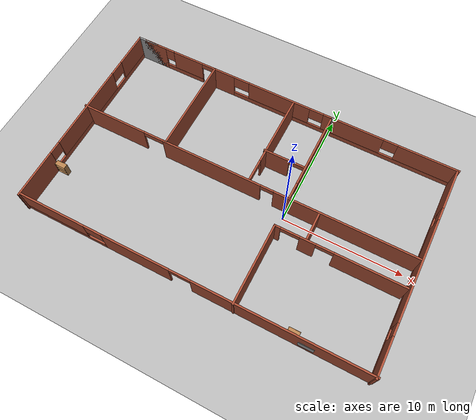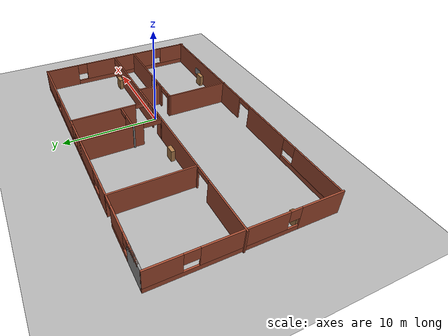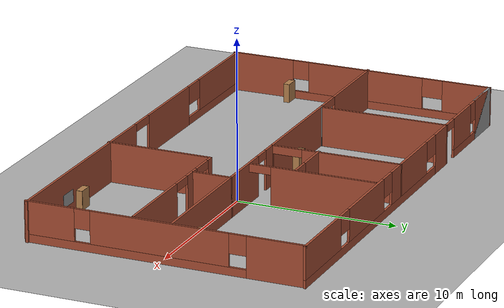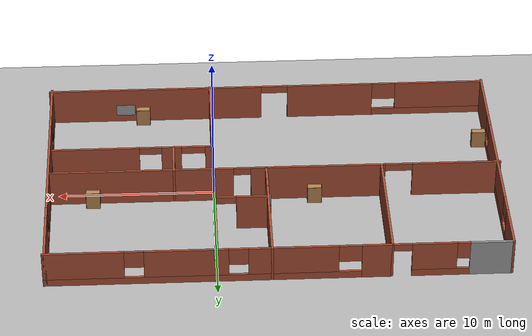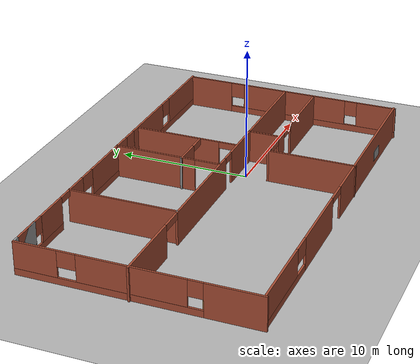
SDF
<sdf version="1.9">
 <world name="default">
  <gravity>0 0 -9.8</gravity>
  <magnetic_field>6e-06 2.3e-05 -4.2e-05</magnetic_field>
  <atmosphere type="adiabatic"/>
  <physics type="ode">
   <max_step_size>0.001</max_step_size>
   <real_time_factor>1</real_time_factor>
   <real_time_update_rate>1000</real_time_update_rate>
  </physics>
  <scene><ambient>0.4 0.4 0.4 1</ambient><background>0.7 0.7 0.7 1</background><shadows>true</shadows></scene>
  <model name="home">
   <pose>-3.83983 0.260073 0 0 -0 0</pose>
   <link name="Wall_0">
    <pose>0.359938 8.61553 0 0 -0 0</pose>
    <visual name="Wall_0_Visual_0">
     <pose>-13.176 0 1.25 0 -0 0</pose>
     <geometry><box><size>2.14806 0.15 2.5</size></box></geometry>
     <material>
      <script><uri>file://media/materials/scripts/gazebo.material</uri><name>Gazebo/Bricks</name></script>
      <ambient>1 1 1 1</ambient>
     </material>
     <meta><layer>0</layer></meta>
    </visual>
    <collision name="Wall_0_Collision_0">
     <geometry><box><size>2.14806 0.15 2.5</size></box></geometry>
     <pose>-13.176 0 1.25 0 -0 0</pose>
    </collision>
    <visual name="Wall_0_Visual_1">
     <pose>-6.35296 0 1.25 0 -0 0</pose>
     <geometry><box><size>1.86866 0.15 2.5</size></box></geometry>
     <material>
      <script><uri>file://media/materials/scripts/gazebo.material</uri><name>Gazebo/Bricks</name></script>
      <ambient>1 1 1 1</ambient>
     </material>
     <meta><layer>0</layer></meta>
    </visual>
    <collision name="Wall_0_Collision_1">
     <geometry><box><size>1.86866 0.15 2.5</size></box></geometry>
     <pose>-6.35296 0 1.25 0 -0 0</pose>
    </collision>
    <visual name="Wall_0_Visual_2">
     <pose>-10.306 0 0.25 0 -0 0</pose>
     <geometry><box><size>3.59185 0.15 0.5</size></box></geometry>
     <material>
      <script><uri>file://media/materials/scripts/gazebo.material</uri><name>Gazebo/Bricks</name></script>
      <ambient>1 1 1 1</ambient>
     </material>
     <meta><layer>0</layer></meta>
    </visual>
    <collision name="Wall_0_Collision_2">
     <geometry><box><size>3.59185 0.15 0.5</size></box></geometry>
     <pose>-10.306 0 0.25 0 -0 0</pose>
    </collision>
    <visual name="Wall_0_Visual_3">
     <pose>4.41569 0 0.25 0 -0 0</pose>
     <geometry><box><size>19.6686 0.15 0.5</size></box></geometry>
     <material>
      <script><uri>file://media/materials/scripts/gazebo.material</uri><name>Gazebo/Bricks</name></script>
      <ambient>1 1 1 1</ambient>
     </material>
     <meta><layer>0</layer></meta>
    </visual>
    <collision name="Wall_0_Collision_3">
     <geometry><box><size>19.6686 0.15 0.5</size></box></geometry>
     <pose>4.41569 0 0.25 0 -0 0</pose>
    </collision>
    <visual name="Wall_0_Visual_4">
     <pose>-9.90602 0 1.5 0 -0 0</pose>
     <geometry><box><size>2.79185 0.15 2</size></box></geometry>
     <material>
      <script><uri>file://media/materials/scripts/gazebo.material</uri><name>Gazebo/Bricks</name></script>
      <ambient>1 1 1 1</ambient>
     </material>
     <meta><layer>0</layer></meta>
    </visual>
    <collision name="Wall_0_Collision_4">
     <geometry><box><size>2.79185 0.15 2</size></box></geometry>
     <pose>-9.90602 0 1.5 0 -0 0</pose>
    </collision>
    <visual name="Wall_0_Visual_5">
     <pose>-9.90602 0 1.5 0 -0 0</pose>
     <geometry><box><size>2.79185 0.15 2</size></box></geometry>
     <material>
      <script><uri>file://media/materials/scripts/gazebo.material</uri><name>Gazebo/Bricks</name></script>
      <ambient>1 1 1 1</ambient>
     </material>
     <meta><layer>0</layer></meta>
    </visual>
    <collision name="Wall_0_Collision_5">
     <geometry><box><size>2.79185 0.15 2</size></box></geometry>
     <pose>-9.90602 0 1.5 0 -0 0</pose>
    </collision>
    <visual name="Wall_0_Visual_6">
     <pose>-1.21828 0 1.5 0 -0 0</pose>
     <geometry><box><size>5.57656 0.15 2</size></box></geometry>
     <material>
      <script><uri>file://media/materials/scripts/gazebo.material</uri><name>Gazebo/Bricks</name></script>
      <ambient>1 1 1 1</ambient>
     </material>
     <meta><layer>0</layer></meta>
    </visual>
    <collision name="Wall_0_Collision_6">
     <geometry><box><size>5.57656 0.15 2</size></box></geometry>
     <pose>-1.21828 0 1.5 0 -0 0</pose>
    </collision>
    <visual name="Wall_0_Visual_7">
     <pose>5.38737 0 1.5 0 -0 0</pose>
     <geometry><box><size>5.21864 0.15 2</size></box></geometry>
     <material>
      <script><uri>file://media/materials/scripts/gazebo.material</uri><name>Gazebo/Bricks</name></script>
      <ambient>1 1 1 1</ambient>
     </material>
     <meta><layer>0</layer></meta>
    </visual>
    <collision name="Wall_0_Collision_7">
     <geometry><box><size>5.21864 0.15 2</size></box></geometry>
     <pose>5.38737 0 1.5 0 -0 0</pose>
    </collision>
    <visual name="Wall_0_Visual_8">
     <pose>11.7274 0 1.5 0 -0 0</pose>
     <geometry><box><size>5.04527 0.15 2</size></box></geometry>
     <material>
      <script><uri>file://media/materials/scripts/gazebo.material</uri><name>Gazebo/Bricks</name></script>
      <ambient>1 1 1 1</ambient>
     </material>
     <meta><layer>0</layer></meta>
    </visual>
    <collision name="Wall_0_Collision_8">
     <geometry><box><size>5.04527 0.15 2</size></box></geometry>
     <pose>11.7274 0 1.5 0 -0 0</pose>
    </collision>
    <visual name="Wall_0_Visual_9">
     <pose>-11.7019 0 1.9 0 -0 0</pose>
     <geometry><box><size>0.8 0.15 1.2</size></box></geometry>
     <material>
      <script><uri>file://media/materials/scripts/gazebo.material</uri><name>Gazebo/Bricks</name></script>
      <ambient>1 1 1 1</ambient>
     </material>
     <meta><layer>0</layer></meta>
    </visual>
    <collision name="Wall_0_Collision_9">
     <geometry><box><size>0.8 0.15 1.2</size></box></geometry>
     <pose>-11.7019 0 1.9 0 -0 0</pose>
    </collision>
    <visual name="Wall_0_Visual_10">
     <pose>-4.71259 0 1.9 0 -0 0</pose>
     <geometry><box><size>1.41206 0.15 1.2</size></box></geometry>
     <material>
      <script><uri>file://media/materials/scripts/gazebo.material</uri><name>Gazebo/Bricks</name></script>
      <ambient>1 1 1 1</ambient>
     </material>
     <meta><layer>0</layer></meta>
    </visual>
    <collision name="Wall_0_Collision_10">
     <geometry><box><size>1.41206 0.15 1.2</size></box></geometry>
     <pose>-4.71259 0 1.9 0 -0 0</pose>
    </collision>
    <visual name="Wall_0_Visual_11">
     <pose>2.17402 0 1.9 0 -0 0</pose>
     <geometry><box><size>1.20804 0.15 1.2</size></box></geometry>
     <material>
      <script><uri>file://media/materials/scripts/gazebo.material</uri><name>Gazebo/Bricks</name></script>
      <ambient>1 1 1 1</ambient>
     </material>
     <meta><layer>0</layer></meta>
    </visual>
    <collision name="Wall_0_Collision_11">
     <geometry><box><size>1.20804 0.15 1.2</size></box></geometry>
     <pose>2.17402 0 1.9 0 -0 0</pose>
    </collision>
    <visual name="Wall_0_Visual_12">
     <pose>8.60071 0 1.9 0 -0 0</pose>
     <geometry><box><size>1.20804 0.15 1.2</size></box></geometry>
     <material>
      <script><uri>file://media/materials/scripts/gazebo.material</uri><name>Gazebo/Bricks</name></script>
      <ambient>1 1 1 1</ambient>
     </material>
     <meta><layer>0</layer></meta>
    </visual>
    <collision name="Wall_0_Collision_12">
     <geometry><box><size>1.20804 0.15 1.2</size></box></geometry>
     <pose>8.60071 0 1.9 0 -0 0</pose>
    </collision>
    <visual name="Wall_0_Visual_13">
     <pose>-7.89869 0 2.25 0 -0 0</pose>
     <geometry><box><size>1.2228 0.15 0.5</size></box></geometry>
     <material>
      <script><uri>file://media/materials/scripts/gazebo.material</uri><name>Gazebo/Bricks</name></script>
      <ambient>1 1 1 1</ambient>
     </material>
     <meta><layer>0</layer></meta>
    </visual>
    <collision name="Wall_0_Collision_13">
     <geometry><box><size>1.2228 0.15 0.5</size></box></geometry>
     <pose>-7.89869 0 2.25 0 -0 0</pose>
    </collision>
    <visual name="Wall_0_Visual_14">
     <pose>-7.89869 0 2.25 0 -0 0</pose>
     <geometry><box><size>1.2228 0.15 0.5</size></box></geometry>
     <material>
      <script><uri>file://media/materials/scripts/gazebo.material</uri><name>Gazebo/Bricks</name></script>
      <ambient>1 1 1 1</ambient>
     </material>
     <meta><layer>0</layer></meta>
    </visual>
    <collision name="Wall_0_Collision_14">
     <geometry><box><size>1.2228 0.15 0.5</size></box></geometry>
     <pose>-7.89869 0 2.25 0 -0 0</pose>
    </collision>
    <inertial>
     <mass>1</mass>
     <inertia><ixx>1</ixx><ixy>0</ixy><ixz>0</ixz><iyy>1</iyy><iyz>0</iyz><izz>1</izz></inertia>
    </inertial>
   </link>
   <link name="Wall_1">
    <pose>14.4329 0 0 0 0 -1.5708</pose>
    <visual name="Wall_1_Visual_0">
     <pose>-6.87833 0 1.25 0 -0 0</pose>
     <geometry><box><size>3.6244 0.15 2.5</size></box></geometry>
     <material>
      <script><uri>file://media/materials/scripts/gazebo.material</uri><name>Gazebo/Bricks</name></script>
      <ambient>1 1 1 1</ambient>
     </material>
     <meta><layer>0</layer></meta>
    </visual>
    <collision name="Wall_1_Collision_0">
     <geometry><box><size>3.6244 0.15 2.5</size></box></geometry>
     <pose>-6.87833 0 1.25 0 -0 0</pose>
    </collision>
    <visual name="Wall_1_Visual_1">
     <pose>1.8122 0 0.25 0 -0 0</pose>
     <geometry><box><size>13.7567 0.15 0.5</size></box></geometry>
     <material>
      <script><uri>file://media/materials/scripts/gazebo.material</uri><name>Gazebo/Bricks</name></script>
      <ambient>1 1 1 1</ambient>
     </material>
     <meta><layer>0</layer></meta>
    </visual>
    <collision name="Wall_1_Collision_1">
     <geometry><box><size>13.7567 0.15 0.5</size></box></geometry>
     <pose>1.8122 0 0.25 0 -0 0</pose>
    </collision>
    <visual name="Wall_1_Visual_2">
     <pose>0.280547 0 1.5 0 -0 0</pose>
     <geometry><box><size>8.55372 0.15 2</size></box></geometry>
     <material>
      <script><uri>file://media/materials/scripts/gazebo.material</uri><name>Gazebo/Bricks</name></script>
      <ambient>1 1 1 1</ambient>
     </material>
     <meta><layer>0</layer></meta>
    </visual>
    <collision name="Wall_1_Collision_2">
     <geometry><box><size>8.55372 0.15 2</size></box></geometry>
     <pose>0.280547 0 1.5 0 -0 0</pose>
    </collision>
    <visual name="Wall_1_Visual_3">
     <pose>7.11391 0 1.5 0 -0 0</pose>
     <geometry><box><size>3.15324 0.15 2</size></box></geometry>
     <material>
      <script><uri>file://media/materials/scripts/gazebo.material</uri><name>Gazebo/Bricks</name></script>
      <ambient>1 1 1 1</ambient>
     </material>
     <meta><layer>0</layer></meta>
    </visual>
    <collision name="Wall_1_Collision_3">
     <geometry><box><size>3.15324 0.15 2</size></box></geometry>
     <pose>7.11391 0 1.5 0 -0 0</pose>
    </collision>
    <visual name="Wall_1_Visual_4">
     <pose>-4.53122 0 1.9 0 -0 0</pose>
     <geometry><box><size>1.06982 0.15 1.2</size></box></geometry>
     <material>
      <script><uri>file://media/materials/scripts/gazebo.material</uri><name>Gazebo/Bricks</name></script>
      <ambient>1 1 1 1</ambient>
     </material>
     <meta><layer>0</layer></meta>
    </visual>
    <collision name="Wall_1_Collision_4">
     <geometry><box><size>1.06982 0.15 1.2</size></box></geometry>
     <pose>-4.53122 0 1.9 0 -0 0</pose>
    </collision>
    <visual name="Wall_1_Visual_5">
     <pose>5.04735 0 1.9 0 -0 0</pose>
     <geometry><box><size>0.979879 0.15 1.2</size></box></geometry>
     <material>
      <script><uri>file://media/materials/scripts/gazebo.material</uri><name>Gazebo/Bricks</name></script>
      <ambient>1 1 1 1</ambient>
     </material>
     <meta><layer>0</layer></meta>
    </visual>
    <collision name="Wall_1_Collision_5">
     <geometry><box><size>0.979879 0.15 1.2</size></box></geometry>
     <pose>5.04735 0 1.9 0 -0 0</pose>
    </collision>
    <inertial>
     <mass>1</mass>
     <inertia><ixx>1</ixx><ixy>0</ixy><ixz>0</ixz><iyy>1</iyy><iyz>0</iyz><izz>1</izz></inertia>
    </inertial>
   </link>
   <link name="Wall_11">
    <collision name="Wall_11_Collision">
     <geometry><box><size>0.16 0.15 2.5</size></box></geometry>
     <pose>0 0 1.25 0 -0 0</pose>
    </collision>
    <visual name="Wall_11_Visual">
     <pose>0 0 1.25 0 -0 0</pose>
     <geometry><box><size>0.16 0.15 2.5</size></box></geometry>
     <material>
      <script><uri>file://media/materials/scripts/gazebo.material</uri><name>Gazebo/Grey</name></script>
      <ambient>1 1 1 1</ambient>
     </material>
     <meta><layer>0</layer></meta>
    </visual>
    <pose>3.96813 8.61553 0 0 -0 0</pose>
    <inertial>
     <mass>1</mass>
     <inertia><ixx>1</ixx><ixy>0</ixy><ixz>0</ixz><iyy>1</iyy><iyz>0</iyz><izz>1</izz></inertia>
    </inertial>
   </link>
   <link name="Wall_17">
    <pose>9.03233 -1.96447 0 0 -0 0</pose>
    <visual name="Wall_17_Visual_0">
     <pose>-4.97826 0 1.25 0 -0 0</pose>
     <geometry><box><size>0.543472 0.15 2.5</size></box></geometry>
     <material>
      <script><uri>file://media/materials/scripts/gazebo.material</uri><name>Gazebo/Bricks</name></script>
      <ambient>1 1 1 1</ambient>
     </material>
     <meta><layer>0</layer></meta>
    </visual>
    <collision name="Wall_17_Collision_0">
     <geometry><box><size>0.543472 0.15 2.5</size></box></geometry>
     <pose>-4.97826 0 1.25 0 -0 0</pose>
    </collision>
    <visual name="Wall_17_Visual_1">
     <pose>-2.51429 0 1.25 0 -0 0</pose>
     <geometry><box><size>1.29038 0.15 2.5</size></box></geometry>
     <material>
      <script><uri>file://media/materials/scripts/gazebo.material</uri><name>Gazebo/Bricks</name></script>
      <ambient>1 1 1 1</ambient>
     </material>
     <meta><layer>0</layer></meta>
    </visual>
    <collision name="Wall_17_Collision_1">
     <geometry><box><size>1.29038 0.15 2.5</size></box></geometry>
     <pose>-2.51429 0 1.25 0 -0 0</pose>
    </collision>
    <visual name="Wall_17_Visual_2">
     <pose>2.40495 0 1.25 0 -0 0</pose>
     <geometry><box><size>5.6901 0.15 2.5</size></box></geometry>
     <material>
      <script><uri>file://media/materials/scripts/gazebo.material</uri><name>Gazebo/Bricks</name></script>
      <ambient>1 1 1 1</ambient>
     </material>
     <meta><layer>0</layer></meta>
    </visual>
    <collision name="Wall_17_Collision_2">
     <geometry><box><size>5.6901 0.15 2.5</size></box></geometry>
     <pose>2.40495 0 1.25 0 -0 0</pose>
    </collision>
    <visual name="Wall_17_Visual_3">
     <pose>-3.933 0 2.25 0 -0 0</pose>
     <geometry><box><size>1.54705 0.15 0.5</size></box></geometry>
     <material>
      <script><uri>file://media/materials/scripts/gazebo.material</uri><name>Gazebo/Bricks</name></script>
      <ambient>1 1 1 1</ambient>
     </material>
     <meta><layer>0</layer></meta>
    </visual>
    <collision name="Wall_17_Collision_3">
     <geometry><box><size>1.54705 0.15 0.5</size></box></geometry>
     <pose>-3.933 0 2.25 0 -0 0</pose>
    </collision>
    <visual name="Wall_17_Visual_4">
     <pose>-1.1546 0 2.25 0 -0 0</pose>
     <geometry><box><size>1.429 0.15 0.5</size></box></geometry>
     <material>
      <script><uri>file://media/materials/scripts/gazebo.material</uri><name>Gazebo/Bricks</name></script>
      <ambient>1 1 1 1</ambient>
     </material>
     <meta><layer>0</layer></meta>
    </visual>
    <collision name="Wall_17_Collision_4">
     <geometry><box><size>1.429 0.15 0.5</size></box></geometry>
     <pose>-1.1546 0 2.25 0 -0 0</pose>
    </collision>
    <inertial>
     <mass>1</mass>
     <inertia><ixx>1</ixx><ixy>0</ixy><ixz>0</ixz><iyy>1</iyy><iyz>0</iyz><izz>1</izz></inertia>
    </inertial>
   </link>
   <link name="Wall_19">
    <collision name="Wall_19_Collision">
     <geometry><box><size>2.5 0.15 2.5</size></box></geometry>
     <pose>0 0 1.25 0 -0 0</pose>
    </collision>
    <visual name="Wall_19_Visual">
     <pose>0 0 1.25 0 -0 0</pose>
     <geometry><box><size>2.5 0.15 2.5</size></box></geometry>
     <material>
      <script><uri>file://media/materials/scripts/gazebo.material</uri><name>Gazebo/Bricks</name></script>
      <ambient>1 1 1 1</ambient>
     </material>
     <meta><layer>0</layer></meta>
    </visual>
    <pose>6.39653 -0.706073 0 0 0 -1.5708</pose>
    <inertial>
     <mass>1</mass>
     <inertia><ixx>1</ixx><ixy>0</ixy><ixz>0</ixz><iyy>1</iyy><iyz>0</iyz><izz>1</izz></inertia>
    </inertial>
   </link>
   <link name="Wall_2">
    <pose>0.126872 -8.49658 0 0 -0 3.14159</pose>
    <visual name="Wall_2_Visual_0">
     <pose>-7.39469 0 1.25 0 -0 0</pose>
     <geometry><box><size>14.2106 0.15 2.5</size></box></geometry>
     <material>
      <script><uri>file://media/materials/scripts/gazebo.material</uri><name>Gazebo/Bricks</name></script>
      <ambient>1 1 1 1</ambient>
     </material>
     <meta><layer>0</layer></meta>
    </visual>
    <collision name="Wall_2_Collision_0">
     <geometry><box><size>14.2106 0.15 2.5</size></box></geometry>
     <pose>-7.39469 0 1.25 0 -0 0</pose>
    </collision>
    <visual name="Wall_2_Visual_1">
     <pose>4.3199 0 1.25 0 -0 0</pose>
     <geometry><box><size>5.72155 0.15 2.5</size></box></geometry>
     <material>
      <script><uri>file://media/materials/scripts/gazebo.material</uri><name>Gazebo/Bricks</name></script>
      <ambient>1 1 1 1</ambient>
     </material>
     <meta><layer>0</layer></meta>
    </visual>
    <collision name="Wall_2_Collision_1">
     <geometry><box><size>5.72155 0.15 2.5</size></box></geometry>
     <pose>4.3199 0 1.25 0 -0 0</pose>
    </collision>
    <visual name="Wall_2_Visual_2">
     <pose>10.8403 0 0.25 0 -0 0</pose>
     <geometry><box><size>7.31932 0.15 0.5</size></box></geometry>
     <material>
      <script><uri>file://media/materials/scripts/gazebo.material</uri><name>Gazebo/Bricks</name></script>
      <ambient>1 1 1 1</ambient>
     </material>
     <meta><layer>0</layer></meta>
    </visual>
    <collision name="Wall_2_Collision_2">
     <geometry><box><size>7.31932 0.15 0.5</size></box></geometry>
     <pose>10.8403 0 0.25 0 -0 0</pose>
    </collision>
    <visual name="Wall_2_Visual_3">
     <pose>11.6116 0 1.5 0 -0 0</pose>
     <geometry><box><size>5.77687 0.15 2</size></box></geometry>
     <material>
      <script><uri>file://media/materials/scripts/gazebo.material</uri><name>Gazebo/Bricks</name></script>
      <ambient>1 1 1 1</ambient>
     </material>
     <meta><layer>0</layer></meta>
    </visual>
    <collision name="Wall_2_Collision_3">
     <geometry><box><size>5.77687 0.15 2</size></box></geometry>
     <pose>11.6116 0 1.5 0 -0 0</pose>
    </collision>
    <visual name="Wall_2_Visual_4">
     <pose>7.9519 0 1.9 0 -0 0</pose>
     <geometry><box><size>1.54245 0.15 1.2</size></box></geometry>
     <material>
      <script><uri>file://media/materials/scripts/gazebo.material</uri><name>Gazebo/Bricks</name></script>
      <ambient>1 1 1 1</ambient>
     </material>
     <meta><layer>0</layer></meta>
    </visual>
    <collision name="Wall_2_Collision_4">
     <geometry><box><size>1.54245 0.15 1.2</size></box></geometry>
     <pose>7.9519 0 1.9 0 -0 0</pose>
    </collision>
    <visual name="Wall_2_Visual_5">
     <pose>0.584873 0 2.25 0 -0 0</pose>
     <geometry><box><size>1.74852 0.15 0.5</size></box></geometry>
     <material>
      <script><uri>file://media/materials/scripts/gazebo.material</uri><name>Gazebo/Bricks</name></script>
      <ambient>1 1 1 1</ambient>
     </material>
     <meta><layer>0</layer></meta>
    </visual>
    <collision name="Wall_2_Collision_5">
     <geometry><box><size>1.74852 0.15 0.5</size></box></geometry>
     <pose>0.584873 0 2.25 0 -0 0</pose>
    </collision>
    <inertial>
     <mass>1</mass>
     <inertia><ixx>1</ixx><ixy>0</ixy><ixz>0</ixz><iyy>1</iyy><iyz>0</iyz><izz>1</izz></inertia>
    </inertial>
   </link>
   <link name="Wall_21">
    <pose>0.471727 4.56553 0 0 0 -1.5708</pose>
    <visual name="Wall_21_Visual_0">
     <pose>-0.9798 0 1.25 0 -0 0</pose>
     <geometry><box><size>6.2904 0.15 2.5</size></box></geometry>
     <material>
      <script><uri>file://media/materials/scripts/gazebo.material</uri><name>Gazebo/Bricks</name></script>
      <ambient>1 1 1 1</ambient>
     </material>
     <meta><layer>0</layer></meta>
    </visual>
    <collision name="Wall_21_Collision_0">
     <geometry><box><size>6.2904 0.15 2.5</size></box></geometry>
     <pose>-0.9798 0 1.25 0 -0 0</pose>
    </collision>
    <visual name="Wall_21_Visual_1">
     <pose>4.0713 0 1.25 0 -0 0</pose>
     <geometry><box><size>0.1074 0.15 2.5</size></box></geometry>
     <material>
      <script><uri>file://media/materials/scripts/gazebo.material</uri><name>Gazebo/Bricks</name></script>
      <ambient>1 1 1 1</ambient>
     </material>
     <meta><layer>0</layer></meta>
    </visual>
    <collision name="Wall_21_Collision_1">
     <geometry><box><size>0.1074 0.15 2.5</size></box></geometry>
     <pose>4.0713 0 1.25 0 -0 0</pose>
    </collision>
    <visual name="Wall_21_Visual_2">
     <pose>3.0915 0 2.25 0 -0 0</pose>
     <geometry><box><size>1.8522 0.15 0.5</size></box></geometry>
     <material>
      <script><uri>file://media/materials/scripts/gazebo.material</uri><name>Gazebo/Bricks</name></script>
      <ambient>1 1 1 1</ambient>
     </material>
     <meta><layer>0</layer></meta>
    </visual>
    <collision name="Wall_21_Collision_2">
     <geometry><box><size>1.8522 0.15 0.5</size></box></geometry>
     <pose>3.0915 0 2.25 0 -0 0</pose>
    </collision>
    <inertial>
     <mass>1</mass>
     <inertia><ixx>1</ixx><ixy>0</ixy><ixz>0</ixz><iyy>1</iyy><iyz>0</iyz><izz>1</izz></inertia>
    </inertial>
   </link>
   <link name="Wall_24">
    <collision name="Wall_24_Collision">
     <geometry><box><size>8.25 0.15 2.5</size></box></geometry>
     <pose>0 0 1.25 0 -0 0</pose>
    </collision>
    <visual name="Wall_24_Visual">
     <pose>0 0 1.25 0 -0 0</pose>
     <geometry><box><size>8.25 0.15 2.5</size></box></geometry>
     <material>
      <script><uri>file://media/materials/scripts/gazebo.material</uri><name>Gazebo/Bricks</name></script>
      <ambient>1 1 1 1</ambient>
     </material>
     <meta><layer>0</layer></meta>
    </visual>
    <pose>-6.93427 4.56553 0 0 0 -1.5708</pose>
    <inertial>
     <mass>1</mass>
     <inertia><ixx>1</ixx><ixy>0</ixy><ixz>0</ixz><iyy>1</iyy><iyz>0</iyz><izz>1</izz></inertia>
    </inertial>
   </link>
   <link name="Wall_25">
    <collision name="Wall_25_Collision">
     <geometry><box><size>0.16 0.15 2.5</size></box></geometry>
     <pose>0 0 1.25 0 -0 0</pose>
    </collision>
    <visual name="Wall_25_Visual">
     <pose>0 0 1.25 0 -0 0</pose>
     <geometry><box><size>0.16 0.15 2.5</size></box></geometry>
     <material>
      <script><uri>file://media/materials/scripts/gazebo.material</uri><name>Gazebo/Grey</name></script>
      <ambient>1 1 1 1</ambient>
     </material>
     <meta><layer>0</layer></meta>
    </visual>
    <pose>-6.92927 0.515527 0 0 -0 0</pose>
    <inertial>
     <mass>1</mass>
     <inertia><ixx>1</ixx><ixy>0</ixy><ixz>0</ixz><iyy>1</iyy><iyz>0</iyz><izz>1</izz></inertia>
    </inertial>
   </link>
   <link name="Wall_27">
    <collision name="Wall_27_Collision">
     <geometry><box><size>0.16 0.15 2.5</size></box></geometry>
     <pose>0 0 1.25 0 -0 0</pose>
    </collision>
    <visual name="Wall_27_Visual">
     <pose>0 0 1.25 0 -0 0</pose>
     <geometry><box><size>0.16 0.15 2.5</size></box></geometry>
     <material>
      <script><uri>file://media/materials/scripts/gazebo.material</uri><name>Gazebo/Grey</name></script>
      <ambient>1 1 1 1</ambient>
     </material>
     <meta><layer>0</layer></meta>
    </visual>
    <pose>0.370927 3.43133 0 0 -0 0</pose>
    <inertial>
     <mass>1</mass>
     <inertia><ixx>1</ixx><ixy>0</ixy><ixz>0</ixz><iyy>1</iyy><iyz>0</iyz><izz>1</izz></inertia>
    </inertial>
   </link>
   <link name="Wall_28">
    <pose>2.05093 3.43133 0 0 -0 0</pose>
    <visual name="Wall_28_Visual_0">
     <pose>-0.651557 0 1.25 0 -0 0</pose>
     <geometry><box><size>2.19689 0.15 2.5</size></box></geometry>
     <material>
      <script><uri>file://media/materials/scripts/gazebo.material</uri><name>Gazebo/Bricks</name></script>
      <ambient>1 1 1 1</ambient>
     </material>
     <meta><layer>0</layer></meta>
    </visual>
    <collision name="Wall_28_Collision_0">
     <geometry><box><size>2.19689 0.15 2.5</size></box></geometry>
     <pose>-0.651557 0 1.25 0 -0 0</pose>
    </collision>
    <visual name="Wall_28_Visual_1">
     <pose>1.09844 0 2.25 0 -0 0</pose>
     <geometry><box><size>1.30311 0.15 0.5</size></box></geometry>
     <material>
      <script><uri>file://media/materials/scripts/gazebo.material</uri><name>Gazebo/Bricks</name></script>
      <ambient>1 1 1 1</ambient>
     </material>
     <meta><layer>0</layer></meta>
    </visual>
    <collision name="Wall_28_Collision_1">
     <geometry><box><size>1.30311 0.15 0.5</size></box></geometry>
     <pose>1.09844 0 2.25 0 -0 0</pose>
    </collision>
    <inertial>
     <mass>1</mass>
     <inertia><ixx>1</ixx><ixy>0</ixy><ixz>0</ixz><iyy>1</iyy><iyz>0</iyz><izz>1</izz></inertia>
    </inertial>
   </link>
   <link name="Wall_3">
    <pose>-14.4171 0 0 0 -0 1.5708</pose>
    <visual name="Wall_3_Visual_0">
     <pose>-6.61924 0 1.25 0 -0 0</pose>
     <geometry><box><size>4.14258 0.15 2.5</size></box></geometry>
     <material>
      <script><uri>file://media/materials/scripts/gazebo.material</uri><name>Gazebo/Bricks</name></script>
      <ambient>1 1 1 1</ambient>
     </material>
     <meta><layer>0</layer></meta>
    </visual>
    <collision name="Wall_3_Collision_0">
     <geometry><box><size>4.14258 0.15 2.5</size></box></geometry>
     <pose>-6.61924 0 1.25 0 -0 0</pose>
    </collision>
    <visual name="Wall_3_Visual_1">
     <pose>2.07129 0 0.25 0 -0 0</pose>
     <geometry><box><size>13.2385 0.15 0.5</size></box></geometry>
     <material>
      <script><uri>file://media/materials/scripts/gazebo.material</uri><name>Gazebo/Bricks</name></script>
      <ambient>1 1 1 1</ambient>
     </material>
     <meta><layer>0</layer></meta>
    </visual>
    <collision name="Wall_3_Collision_1">
     <geometry><box><size>13.2385 0.15 0.5</size></box></geometry>
     <pose>2.07129 0 0.25 0 -0 0</pose>
    </collision>
    <visual name="Wall_3_Visual_2">
     <pose>0.349031 0 1.5 0 -0 0</pose>
     <geometry><box><size>7.65432 0.15 2</size></box></geometry>
     <material>
      <script><uri>file://media/materials/scripts/gazebo.material</uri><name>Gazebo/Bricks</name></script>
      <ambient>1 1 1 1</ambient>
     </material>
     <meta><layer>0</layer></meta>
    </visual>
    <collision name="Wall_3_Collision_2">
     <geometry><box><size>7.65432 0.15 2</size></box></geometry>
     <pose>0.349031 0 1.5 0 -0 0</pose>
    </collision>
    <visual name="Wall_3_Visual_3">
     <pose>7.10318 0 1.5 0 -0 0</pose>
     <geometry><box><size>3.1747 0.15 2</size></box></geometry>
     <material>
      <script><uri>file://media/materials/scripts/gazebo.material</uri><name>Gazebo/Bricks</name></script>
      <ambient>1 1 1 1</ambient>
     </material>
     <meta><layer>0</layer></meta>
    </visual>
    <collision name="Wall_3_Collision_3">
     <geometry><box><size>3.1747 0.15 2</size></box></geometry>
     <pose>7.10318 0 1.5 0 -0 0</pose>
    </collision>
    <visual name="Wall_3_Visual_4">
     <pose>-4.01304 0 1.9 0 -0 0</pose>
     <geometry><box><size>1.06982 0.15 1.2</size></box></geometry>
     <material>
      <script><uri>file://media/materials/scripts/gazebo.material</uri><name>Gazebo/Bricks</name></script>
      <ambient>1 1 1 1</ambient>
     </material>
     <meta><layer>0</layer></meta>
    </visual>
    <collision name="Wall_3_Collision_4">
     <geometry><box><size>1.06982 0.15 1.2</size></box></geometry>
     <pose>-4.01304 0 1.9 0 -0 0</pose>
    </collision>
    <visual name="Wall_3_Visual_5">
     <pose>4.84601 0 1.9 0 -0 0</pose>
     <geometry><box><size>1.33964 0.15 1.2</size></box></geometry>
     <material>
      <script><uri>file://media/materials/scripts/gazebo.material</uri><name>Gazebo/Bricks</name></script>
      <ambient>1 1 1 1</ambient>
     </material>
     <meta><layer>0</layer></meta>
    </visual>
    <collision name="Wall_3_Collision_5">
     <geometry><box><size>1.33964 0.15 1.2</size></box></geometry>
     <pose>4.84601 0 1.9 0 -0 0</pose>
    </collision>
    <inertial>
     <mass>1</mass>
     <inertia><ixx>1</ixx><ixy>0</ixy><ixz>0</ixz><iyy>1</iyy><iyz>0</iyz><izz>1</izz></inertia>
    </inertial>
   </link>
   <link name="Wall_30">
    <pose>3.85791 4.49232 0 0 -0 1.5708</pose>
    <visual name="Wall_30_Visual_0">
     <pose>-3.98345 0 1.25 0 -0 0</pose>
     <geometry><box><size>0.0331 0.15 2.5</size></box></geometry>
     <material>
      <script><uri>file://media/materials/scripts/gazebo.material</uri><name>Gazebo/Bricks</name></script>
      <ambient>1 1 1 1</ambient>
     </material>
     <meta><layer>0</layer></meta>
    </visual>
    <collision name="Wall_30_Collision_0">
     <geometry><box><size>0.0331 0.15 2.5</size></box></geometry>
     <pose>-3.98345 0 1.25 0 -0 0</pose>
    </collision>
    <visual name="Wall_30_Visual_1">
     <pose>0.70715 0 1.25 0 -0 0</pose>
     <geometry><box><size>6.5857 0.15 2.5</size></box></geometry>
     <material>
      <script><uri>file://media/materials/scripts/gazebo.material</uri><name>Gazebo/Bricks</name></script>
      <ambient>1 1 1 1</ambient>
     </material>
     <meta><layer>0</layer></meta>
    </visual>
    <collision name="Wall_30_Collision_1">
     <geometry><box><size>6.5857 0.15 2.5</size></box></geometry>
     <pose>0.70715 0 1.25 0 -0 0</pose>
    </collision>
    <visual name="Wall_30_Visual_2">
     <pose>-3.2763 0 2.25 0 -0 0</pose>
     <geometry><box><size>1.3812 0.15 0.5</size></box></geometry>
     <material>
      <script><uri>file://media/materials/scripts/gazebo.material</uri><name>Gazebo/Bricks</name></script>
      <ambient>1 1 1 1</ambient>
     </material>
     <meta><layer>0</layer></meta>
    </visual>
    <collision name="Wall_30_Collision_2">
     <geometry><box><size>1.3812 0.15 0.5</size></box></geometry>
     <pose>-3.2763 0 2.25 0 -0 0</pose>
    </collision>
    <inertial>
     <mass>1</mass>
     <inertia><ixx>1</ixx><ixy>0</ixy><ixz>0</ixz><iyy>1</iyy><iyz>0</iyz><izz>1</izz></inertia>
    </inertial>
   </link>
   <link name="Wall_33">
    <collision name="Wall_33_Collision">
     <geometry><box><size>6.75 0.15 2.5</size></box></geometry>
     <pose>0 0 1.25 0 -0 0</pose>
    </collision>
    <visual name="Wall_33_Visual">
     <pose>0 0 1.25 0 -0 0</pose>
     <geometry><box><size>6.75 0.15 2.5</size></box></geometry>
     <material>
      <script><uri>file://media/materials/scripts/gazebo.material</uri><name>Gazebo/Bricks</name></script>
      <ambient>1 1 1 1</ambient>
     </material>
     <meta><layer>0</layer></meta>
    </visual>
    <pose>3.85733 -5.26447 0 0 0 -1.5708</pose>
    <inertial>
     <mass>1</mass>
     <inertia><ixx>1</ixx><ixy>0</ixy><ixz>0</ixz><iyy>1</iyy><iyz>0</iyz><izz>1</izz></inertia>
    </inertial>
   </link>
   <link name="Wall_4">
    <collision name="Wall_4_Collision">
     <geometry><box><size>2.75 0.15 2.5</size></box></geometry>
     <pose>0 0 1.25 0 -0 0</pose>
    </collision>
    <visual name="Wall_4_Visual">
     <pose>0 0 1.25 0 -0 0</pose>
     <geometry><box><size>2.75 0.15 2.5</size></box></geometry>
     <material>
      <script><uri>file://media/materials/scripts/gazebo.material</uri><name>Gazebo/Grey</name></script>
      <ambient>1 1 1 1</ambient>
     </material>
     <meta><layer>0</layer></meta>
    </visual>
    <pose>-13.1171 8.61553 0 0 -0 0</pose>
    <inertial>
     <mass>1</mass>
     <inertia><ixx>1</ixx><ixy>0</ixy><ixz>0</ixz><iyy>1</iyy><iyz>0</iyz><izz>1</izz></inertia>
    </inertial>
   </link>
   <link name="Wall_7">
    <pose>-0.126873 0.468927 0 0 -0 0</pose>
    <visual name="Wall_7_Visual_0">
     <pose>-11.6457 0 1.25 0 -0 0</pose>
     <geometry><box><size>5.7085 0.15 2.5</size></box></geometry>
     <material>
      <script><uri>file://media/materials/scripts/gazebo.material</uri><name>Gazebo/Bricks</name></script>
      <ambient>1 1 1 1</ambient>
     </material>
     <meta><layer>0</layer></meta>
    </visual>
    <collision name="Wall_7_Collision_0">
     <geometry><box><size>5.7085 0.15 2.5</size></box></geometry>
     <pose>-11.6457 0 1.25 0 -0 0</pose>
    </collision>
    <visual name="Wall_7_Visual_1">
     <pose>-2.72542 0 1.25 0 -0 0</pose>
     <geometry><box><size>8.63937 0.15 2.5</size></box></geometry>
     <material>
      <script><uri>file://media/materials/scripts/gazebo.material</uri><name>Gazebo/Bricks</name></script>
      <ambient>1 1 1 1</ambient>
     </material>
     <meta><layer>0</layer></meta>
    </visual>
    <collision name="Wall_7_Collision_1">
     <geometry><box><size>8.63937 0.15 2.5</size></box></geometry>
     <pose>-2.72542 0 1.25 0 -0 0</pose>
    </collision>
    <visual name="Wall_7_Visual_2">
     <pose>8.60089 0 1.25 0 -0 0</pose>
     <geometry><box><size>11.7982 0.15 2.5</size></box></geometry>
     <material>
      <script><uri>file://media/materials/scripts/gazebo.material</uri><name>Gazebo/Bricks</name></script>
      <ambient>1 1 1 1</ambient>
     </material>
     <meta><layer>0</layer></meta>
    </visual>
    <collision name="Wall_7_Collision_2">
     <geometry><box><size>11.7982 0.15 2.5</size></box></geometry>
     <pose>8.60089 0 1.25 0 -0 0</pose>
    </collision>
    <visual name="Wall_7_Visual_3">
     <pose>-7.9183 0 2.25 0 -0 0</pose>
     <geometry><box><size>1.7464 0.15 0.5</size></box></geometry>
     <material>
      <script><uri>file://media/materials/scripts/gazebo.material</uri><name>Gazebo/Bricks</name></script>
      <ambient>1 1 1 1</ambient>
     </material>
     <meta><layer>0</layer></meta>
    </visual>
    <collision name="Wall_7_Collision_3">
     <geometry><box><size>1.7464 0.15 0.5</size></box></geometry>
     <pose>-7.9183 0 2.25 0 -0 0</pose>
    </collision>
    <visual name="Wall_7_Visual_4">
     <pose>2.14802 0 2.25 0 -0 0</pose>
     <geometry><box><size>1.10752 0.15 0.5</size></box></geometry>
     <material>
      <script><uri>file://media/materials/scripts/gazebo.material</uri><name>Gazebo/Bricks</name></script>
      <ambient>1 1 1 1</ambient>
     </material>
     <meta><layer>0</layer></meta>
    </visual>
    <collision name="Wall_7_Collision_4">
     <geometry><box><size>1.10752 0.15 0.5</size></box></geometry>
     <pose>2.14802 0 2.25 0 -0 0</pose>
    </collision>
    <inertial>
     <mass>1</mass>
     <inertia><ixx>1</ixx><ixy>0</ixy><ixz>0</ixz><iyy>1</iyy><iyz>0</iyz><izz>1</izz></inertia>
    </inertial>
   </link>
   <link name="Window_1">
    <collision name="Window_1_Collision">
     <geometry><box><size>1.2497 0.2 0.8</size></box></geometry>
     <pose>0 0 0.4 0 -0 0</pose>
    </collision>
    <visual name="Window_1_Visual">
     <pose>0 0 0.4 0 -0 0</pose>
     <geometry><box><size>1.2497 0.2 0.8</size></box></geometry>
     <material>
      <script><uri>file://media/materials/scripts/gazebo.material</uri><name>Gazebo/Grey</name></script>
     </material>
    </visual>
    <pose>9.54177 -8.50731 0.5 0 -0 0</pose>
    <inertial>
     <mass>1</mass>
     <inertia><ixx>1</ixx><ixy>0</ixy><ixz>0</ixz><iyy>1</iyy><iyz>0</iyz><izz>1</izz></inertia>
    </inertial>
   </link>
   <static>true</static>
  </model>
  <model name="Bookshelf">
   <static>true</static>
   <link name="link">
    <inertial>
     <mass>1</mass>
     <inertia><ixx>1</ixx><ixy>0</ixy><ixz>0</ixz><iyy>1</iyy><iyz>0</iyz><izz>1</izz></inertia>
    </inertial>
    <collision name="back">
     <pose>0 0.005 0.6 0 0 0</pose>
     <geometry><box><size>0.9 0.01 1.2</size></box></geometry>
    </collision>
    <visual name="visual1">
     <pose>0 0.005 0.6 0 0 0</pose>
     <geometry><box><size>0.9 0.01 1.2</size></box></geometry>
     <material>
      <diffuse>1 1 1 1</diffuse>
      <script><uri>file://media/materials/scripts/gazebo.material</uri><name>Gazebo/Wood</name></script>
      <pbr>
       <metal>
        <albedo_map>https://fuel.gazebosim.org/1.0/openrobotics/models/bookshelf/4/files/bookshelf_diffuse.jpg</albedo_map>
       </metal>
      </pbr>
     </material>
    </visual>
    <collision name="left_side">
     <pose>0.45 -0.195 0.6 0 0 0</pose>
     <geometry><box><size>0.02 0.4 1.2</size></box></geometry>
    </collision>
    <visual name="visual2">
     <pose>0.45 -0.195 0.6 0 0 0</pose>
     <geometry><box><size>0.02 0.4 1.2</size></box></geometry>
     <material>
      <diffuse>1 1 1 1</diffuse>
      <script><uri>file://media/materials/scripts/gazebo.material</uri><name>Gazebo/Wood</name></script>
      <pbr>
       <metal>
        <albedo_map>https://fuel.gazebosim.org/1.0/openrobotics/models/bookshelf/4/files/bookshelf_diffuse.jpg</albedo_map>
       </metal>
      </pbr>
     </material>
    </visual>
    <collision name="right_side">
     <pose>-0.45 -0.195 0.6 0 0 0</pose>
     <geometry><box><size>0.02 0.4 1.2</size></box></geometry>
    </collision>
    <visual name="visual3">
     <pose>-0.45 -0.195 0.6 0 0 0</pose>
     <geometry><box><size>0.02 0.4 1.2</size></box></geometry>
     <material>
      <diffuse>1 1 1 1</diffuse>
      <script><uri>file://media/materials/scripts/gazebo.material</uri><name>Gazebo/Wood</name></script>
      <pbr>
       <metal>
        <albedo_map>https://fuel.gazebosim.org/1.0/openrobotics/models/bookshelf/4/files/bookshelf_diffuse.jpg</albedo_map>
       </metal>
      </pbr>
     </material>
    </visual>
    <collision name="bottom">
     <pose>0 -0.195 0.03 0 0 0</pose>
     <geometry><box><size>0.88 0.4 0.06</size></box></geometry>
    </collision>
    <visual name="visual4">
     <pose>0 -0.195 0.03 0 0 0</pose>
     <geometry><box><size>0.88 0.4 0.06</size></box></geometry>
     <material>
      <diffuse>1 1 1 1</diffuse>
      <script><uri>file://media/materials/scripts/gazebo.material</uri><name>Gazebo/Wood</name></script>
      <pbr>
       <metal>
        <albedo_map>https://fuel.gazebosim.org/1.0/openrobotics/models/bookshelf/4/files/bookshelf_diffuse.jpg</albedo_map>
       </metal>
      </pbr>
     </material>
    </visual>
    <collision name="top">
     <pose>0 -0.195 1.19 0 0 0</pose>
     <geometry><box><size>0.88 0.4 0.02</size></box></geometry>
    </collision>
    <visual name="visual5">
     <pose>0 -0.195 1.19 0 0 0</pose>
     <geometry><box><size>0.88 0.4 0.02</size></box></geometry>
     <material>
      <diffuse>1 1 1 1</diffuse>
      <script><uri>file://media/materials/scripts/gazebo.material</uri><name>Gazebo/Wood</name></script>
      <pbr>
       <metal>
        <albedo_map>https://fuel.gazebosim.org/1.0/openrobotics/models/bookshelf/4/files/bookshelf_diffuse.jpg</albedo_map>
       </metal>
      </pbr>
     </material>
    </visual>
    <collision name="low_shelf">
     <pose>0 -0.195 0.43 0 0 0</pose>
     <geometry><box><size>0.88 0.4 0.02</size></box></geometry>
    </collision>
    <visual name="visual6">
     <pose>0 -0.195 0.43 0 0 0</pose>
     <geometry><box><size>0.88 0.4 0.02</size></box></geometry>
     <material>
      <diffuse>1 1 1 1</diffuse>
      <script><uri>file://media/materials/scripts/gazebo.material</uri><name>Gazebo/Wood</name></script>
      <pbr>
       <metal>
        <albedo_map>https://fuel.gazebosim.org/1.0/openrobotics/models/bookshelf/4/files/bookshelf_diffuse.jpg</albedo_map>
       </metal>
      </pbr>
     </material>
    </visual>
    <collision name="high_shelf">
     <pose>0 -0.195 0.8 0 0 0</pose>
     <geometry><box><size>0.88 0.4 0.02</size></box></geometry>
    </collision>
    <visual name="visual7">
     <pose>0 -0.195 0.8 0 0 0</pose>
     <geometry><box><size>0.88 0.4 0.02</size></box></geometry>
     <material>
      <diffuse>1 1 1 1</diffuse>
      <script><uri>file://media/materials/scripts/gazebo.material</uri><name>Gazebo/Wood</name></script>
      <pbr>
       <metal>
        <albedo_map>https://fuel.gazebosim.org/1.0/openrobotics/models/bookshelf/4/files/bookshelf_diffuse.jpg</albedo_map>
       </metal>
      </pbr>
     </material>
    </visual>
   </link>
   <pose>7.78085 1.32557 0 0 -0 0</pose>
  </model>
  <model name="Bookshelf_0">
   <static>true</static>
   <link name="link">
    <inertial>
     <mass>1</mass>
     <inertia><ixx>1</ixx><ixy>0</ixy><ixz>0</ixz><iyy>1</iyy><iyz>0</iyz><izz>1</izz></inertia>
    </inertial>
    <collision name="back">
     <pose>0 0.005 0.6 0 0 0</pose>
     <geometry><box><size>0.9 0.01 1.2</size></box></geometry>
    </collision>
    <visual name="visual1">
     <pose>0 0.005 0.6 0 0 0</pose>
     <geometry><box><size>0.9 0.01 1.2</size></box></geometry>
     <material>
      <diffuse>1 1 1 1</diffuse>
      <script><uri>file://media/materials/scripts/gazebo.material</uri><name>Gazebo/Wood</name></script>
      <pbr>
       <metal>
        <albedo_map>https://fuel.gazebosim.org/1.0/openrobotics/models/bookshelf/4/files/bookshelf_diffuse.jpg</albedo_map>
       </metal>
      </pbr>
     </material>
    </visual>
    <collision name="left_side">
     <pose>0.45 -0.195 0.6 0 0 0</pose>
     <geometry><box><size>0.02 0.4 1.2</size></box></geometry>
    </collision>
    <visual name="visual2">
     <pose>0.45 -0.195 0.6 0 0 0</pose>
     <geometry><box><size>0.02 0.4 1.2</size></box></geometry>
     <material>
      <diffuse>1 1 1 1</diffuse>
      <script><uri>file://media/materials/scripts/gazebo.material</uri><name>Gazebo/Wood</name></script>
      <pbr>
       <metal>
        <albedo_map>https://fuel.gazebosim.org/1.0/openrobotics/models/bookshelf/4/files/bookshelf_diffuse.jpg</albedo_map>
       </metal>
      </pbr>
     </material>
    </visual>
    <collision name="right_side">
     <pose>-0.45 -0.195 0.6 0 0 0</pose>
     <geometry><box><size>0.02 0.4 1.2</size></box></geometry>
    </collision>
    <visual name="visual3">
     <pose>-0.45 -0.195 0.6 0 0 0</pose>
     <geometry><box><size>0.02 0.4 1.2</size></box></geometry>
     <material>
      <diffuse>1 1 1 1</diffuse>
      <script><uri>file://media/materials/scripts/gazebo.material</uri><name>Gazebo/Wood</name></script>
      <pbr>
       <metal>
        <albedo_map>https://fuel.gazebosim.org/1.0/openrobotics/models/bookshelf/4/files/bookshelf_diffuse.jpg</albedo_map>
       </metal>
      </pbr>
     </material>
    </visual>
    <collision name="bottom">
     <pose>0 -0.195 0.03 0 0 0</pose>
     <geometry><box><size>0.88 0.4 0.06</size></box></geometry>
    </collision>
    <visual name="visual4">
     <pose>0 -0.195 0.03 0 0 0</pose>
     <geometry><box><size>0.88 0.4 0.06</size></box></geometry>
     <material>
      <diffuse>1 1 1 1</diffuse>
      <script><uri>file://media/materials/scripts/gazebo.material</uri><name>Gazebo/Wood</name></script>
      <pbr>
       <metal>
        <albedo_map>https://fuel.gazebosim.org/1.0/openrobotics/models/bookshelf/4/files/bookshelf_diffuse.jpg</albedo_map>
       </metal>
      </pbr>
     </material>
    </visual>
    <collision name="top">
     <pose>0 -0.195 1.19 0 0 0</pose>
     <geometry><box><size>0.88 0.4 0.02</size></box></geometry>
    </collision>
    <visual name="visual5">
     <pose>0 -0.195 1.19 0 0 0</pose>
     <geometry><box><size>0.88 0.4 0.02</size></box></geometry>
     <material>
      <diffuse>1 1 1 1</diffuse>
      <script><uri>file://media/materials/scripts/gazebo.material</uri><name>Gazebo/Wood</name></script>
      <pbr>
       <metal>
        <albedo_map>https://fuel.gazebosim.org/1.0/openrobotics/models/bookshelf/4/files/bookshelf_diffuse.jpg</albedo_map>
       </metal>
      </pbr>
     </material>
    </visual>
    <collision name="low_shelf">
     <pose>0 -0.195 0.43 0 0 0</pose>
     <geometry><box><size>0.88 0.4 0.02</size></box></geometry>
    </collision>
    <visual name="visual6">
     <pose>0 -0.195 0.43 0 0 0</pose>
     <geometry><box><size>0.88 0.4 0.02</size></box></geometry>
     <material>
      <diffuse>1 1 1 1</diffuse>
      <script><uri>file://media/materials/scripts/gazebo.material</uri><name>Gazebo/Wood</name></script>
      <pbr>
       <metal>
        <albedo_map>https://fuel.gazebosim.org/1.0/openrobotics/models/bookshelf/4/files/bookshelf_diffuse.jpg</albedo_map>
       </metal>
      </pbr>
     </material>
    </visual>
    <collision name="high_shelf">
     <pose>0 -0.195 0.8 0 0 0</pose>
     <geometry><box><size>0.88 0.4 0.02</size></box></geometry>
    </collision>
    <visual name="visual7">
     <pose>0 -0.195 0.8 0 0 0</pose>
     <geometry><box><size>0.88 0.4 0.02</size></box></geometry>
     <material>
      <diffuse>1 1 1 1</diffuse>
      <script><uri>file://media/materials/scripts/gazebo.material</uri><name>Gazebo/Wood</name></script>
      <pbr>
       <metal>
        <albedo_map>https://fuel.gazebosim.org/1.0/openrobotics/models/bookshelf/4/files/bookshelf_diffuse.jpg</albedo_map>
       </metal>
      </pbr>
     </material>
    </visual>
   </link>
   <pose>4.53536 -7.62125 0 0 -0 0</pose>
  </model>
  <model name="Bookshelf_1">
   <static>true</static>
   <link name="link">
    <inertial>
     <mass>1</mass>
     <inertia><ixx>1</ixx><ixy>0</ixy><ixz>0</ixz><iyy>1</iyy><iyz>0</iyz><izz>1</izz></inertia>
    </inertial>
    <collision name="back">
     <pose>0 0.005 0.6 0 0 0</pose>
     <geometry><box><size>0.9 0.01 1.2</size></box></geometry>
    </collision>
    <visual name="visual1">
     <pose>0 0.005 0.6 0 0 0</pose>
     <geometry><box><size>0.9 0.01 1.2</size></box></geometry>
     <material>
      <diffuse>1 1 1 1</diffuse>
      <script><uri>file://media/materials/scripts/gazebo.material</uri><name>Gazebo/Wood</name></script>
      <pbr>
       <metal>
        <albedo_map>https://fuel.gazebosim.org/1.0/openrobotics/models/bookshelf/4/files/bookshelf_diffuse.jpg</albedo_map>
       </metal>
      </pbr>
     </material>
    </visual>
    <collision name="left_side">
     <pose>0.45 -0.195 0.6 0 0 0</pose>
     <geometry><box><size>0.02 0.4 1.2</size></box></geometry>
    </collision>
    <visual name="visual2">
     <pose>0.45 -0.195 0.6 0 0 0</pose>
     <geometry><box><size>0.02 0.4 1.2</size></box></geometry>
     <material>
      <diffuse>1 1 1 1</diffuse>
      <script><uri>file://media/materials/scripts/gazebo.material</uri><name>Gazebo/Wood</name></script>
      <pbr>
       <metal>
        <albedo_map>https://fuel.gazebosim.org/1.0/openrobotics/models/bookshelf/4/files/bookshelf_diffuse.jpg</albedo_map>
       </metal>
      </pbr>
     </material>
    </visual>
    <collision name="right_side">
     <pose>-0.45 -0.195 0.6 0 0 0</pose>
     <geometry><box><size>0.02 0.4 1.2</size></box></geometry>
    </collision>
    <visual name="visual3">
     <pose>-0.45 -0.195 0.6 0 0 0</pose>
     <geometry><box><size>0.02 0.4 1.2</size></box></geometry>
     <material>
      <diffuse>1 1 1 1</diffuse>
      <script><uri>file://media/materials/scripts/gazebo.material</uri><name>Gazebo/Wood</name></script>
      <pbr>
       <metal>
        <albedo_map>https://fuel.gazebosim.org/1.0/openrobotics/models/bookshelf/4/files/bookshelf_diffuse.jpg</albedo_map>
       </metal>
      </pbr>
     </material>
    </visual>
    <collision name="bottom">
     <pose>0 -0.195 0.03 0 0 0</pose>
     <geometry><box><size>0.88 0.4 0.06</size></box></geometry>
    </collision>
    <visual name="visual4">
     <pose>0 -0.195 0.03 0 0 0</pose>
     <geometry><box><size>0.88 0.4 0.06</size></box></geometry>
     <material>
      <diffuse>1 1 1 1</diffuse>
      <script><uri>file://media/materials/scripts/gazebo.material</uri><name>Gazebo/Wood</name></script>
      <pbr>
       <metal>
        <albedo_map>https://fuel.gazebosim.org/1.0/openrobotics/models/bookshelf/4/files/bookshelf_diffuse.jpg</albedo_map>
       </metal>
      </pbr>
     </material>
    </visual>
    <collision name="top">
     <pose>0 -0.195 1.19 0 0 0</pose>
     <geometry><box><size>0.88 0.4 0.02</size></box></geometry>
    </collision>
    <visual name="visual5">
     <pose>0 -0.195 1.19 0 0 0</pose>
     <geometry><box><size>0.88 0.4 0.02</size></box></geometry>
     <material>
      <diffuse>1 1 1 1</diffuse>
      <script><uri>file://media/materials/scripts/gazebo.material</uri><name>Gazebo/Wood</name></script>
      <pbr>
       <metal>
        <albedo_map>https://fuel.gazebosim.org/1.0/openrobotics/models/bookshelf/4/files/bookshelf_diffuse.jpg</albedo_map>
       </metal>
      </pbr>
     </material>
    </visual>
    <collision name="low_shelf">
     <pose>0 -0.195 0.43 0 0 0</pose>
     <geometry><box><size>0.88 0.4 0.02</size></box></geometry>
    </collision>
    <visual name="visual6">
     <pose>0 -0.195 0.43 0 0 0</pose>
     <geometry><box><size>0.88 0.4 0.02</size></box></geometry>
     <material>
      <diffuse>1 1 1 1</diffuse>
      <script><uri>file://media/materials/scripts/gazebo.material</uri><name>Gazebo/Wood</name></script>
      <pbr>
       <metal>
        <albedo_map>https://fuel.gazebosim.org/1.0/openrobotics/models/bookshelf/4/files/bookshelf_diffuse.jpg</albedo_map>
       </metal>
      </pbr>
     </material>
    </visual>
    <collision name="high_shelf">
     <pose>0 -0.195 0.8 0 0 0</pose>
     <geometry><box><size>0.88 0.4 0.02</size></box></geometry>
    </collision>
    <visual name="visual7">
     <pose>0 -0.195 0.8 0 0 0</pose>
     <geometry><box><size>0.88 0.4 0.02</size></box></geometry>
     <material>
      <diffuse>1 1 1 1</diffuse>
      <script><uri>file://media/materials/scripts/gazebo.material</uri><name>Gazebo/Wood</name></script>
      <pbr>
       <metal>
        <albedo_map>https://fuel.gazebosim.org/1.0/openrobotics/models/bookshelf/4/files/bookshelf_diffuse.jpg</albedo_map>
       </metal>
      </pbr>
     </material>
    </visual>
   </link>
   <pose>-6.44716 1.34064 0 0 -0 0</pose>
  </model>
  <model name="Bookshelf_2">
   <static>true</static>
   <link name="link">
    <inertial>
     <mass>1</mass>
     <inertia><ixx>1</ixx><ixy>0</ixy><ixz>0</ixz><iyy>1</iyy><iyz>0</iyz><izz>1</izz></inertia>
    </inertial>
    <collision name="back">
     <pose>0 0.005 0.6 0 0 0</pose>
     <geometry><box><size>0.9 0.01 1.2</size></box></geometry>
    </collision>
    <visual name="visual1">
     <pose>0 0.005 0.6 0 0 0</pose>
     <geometry><box><size>0.9 0.01 1.2</size></box></geometry>
     <material>
      <diffuse>1 1 1 1</diffuse>
      <script><uri>file://media/materials/scripts/gazebo.material</uri><name>Gazebo/Wood</name></script>
      <pbr>
       <metal>
        <albedo_map>https://fuel.gazebosim.org/1.0/openrobotics/models/bookshelf/4/files/bookshelf_diffuse.jpg</albedo_map>
       </metal>
      </pbr>
     </material>
    </visual>
    <collision name="left_side">
     <pose>0.45 -0.195 0.6 0 0 0</pose>
     <geometry><box><size>0.02 0.4 1.2</size></box></geometry>
    </collision>
    <visual name="visual2">
     <pose>0.45 -0.195 0.6 0 0 0</pose>
     <geometry><box><size>0.02 0.4 1.2</size></box></geometry>
     <material>
      <diffuse>1 1 1 1</diffuse>
      <script><uri>file://media/materials/scripts/gazebo.material</uri><name>Gazebo/Wood</name></script>
      <pbr>
       <metal>
        <albedo_map>https://fuel.gazebosim.org/1.0/openrobotics/models/bookshelf/4/files/bookshelf_diffuse.jpg</albedo_map>
       </metal>
      </pbr>
     </material>
    </visual>
    <collision name="right_side">
     <pose>-0.45 -0.195 0.6 0 0 0</pose>
     <geometry><box><size>0.02 0.4 1.2</size></box></geometry>
    </collision>
    <visual name="visual3">
     <pose>-0.45 -0.195 0.6 0 0 0</pose>
     <geometry><box><size>0.02 0.4 1.2</size></box></geometry>
     <material>
      <diffuse>1 1 1 1</diffuse>
      <script><uri>file://media/materials/scripts/gazebo.material</uri><name>Gazebo/Wood</name></script>
      <pbr>
       <metal>
        <albedo_map>https://fuel.gazebosim.org/1.0/openrobotics/models/bookshelf/4/files/bookshelf_diffuse.jpg</albedo_map>
       </metal>
      </pbr>
     </material>
    </visual>
    <collision name="bottom">
     <pose>0 -0.195 0.03 0 0 0</pose>
     <geometry><box><size>0.88 0.4 0.06</size></box></geometry>
    </collision>
    <visual name="visual4">
     <pose>0 -0.195 0.03 0 0 0</pose>
     <geometry><box><size>0.88 0.4 0.06</size></box></geometry>
     <material>
      <diffuse>1 1 1 1</diffuse>
      <script><uri>file://media/materials/scripts/gazebo.material</uri><name>Gazebo/Wood</name></script>
      <pbr>
       <metal>
        <albedo_map>https://fuel.gazebosim.org/1.0/openrobotics/models/bookshelf/4/files/bookshelf_diffuse.jpg</albedo_map>
       </metal>
      </pbr>
     </material>
    </visual>
    <collision name="top">
     <pose>0 -0.195 1.19 0 0 0</pose>
     <geometry><box><size>0.88 0.4 0.02</size></box></geometry>
    </collision>
    <visual name="visual5">
     <pose>0 -0.195 1.19 0 0 0</pose>
     <geometry><box><size>0.88 0.4 0.02</size></box></geometry>
     <material>
      <diffuse>1 1 1 1</diffuse>
      <script><uri>file://media/materials/scripts/gazebo.material</uri><name>Gazebo/Wood</name></script>
      <pbr>
       <metal>
        <albedo_map>https://fuel.gazebosim.org/1.0/openrobotics/models/bookshelf/4/files/bookshelf_diffuse.jpg</albedo_map>
       </metal>
      </pbr>
     </material>
    </visual>
    <collision name="low_shelf">
     <pose>0 -0.195 0.43 0 0 0</pose>
     <geometry><box><size>0.88 0.4 0.02</size></box></geometry>
    </collision>
    <visual name="visual6">
     <pose>0 -0.195 0.43 0 0 0</pose>
     <geometry><box><size>0.88 0.4 0.02</size></box></geometry>
     <material>
      <diffuse>1 1 1 1</diffuse>
      <script><uri>file://media/materials/scripts/gazebo.material</uri><name>Gazebo/Wood</name></script>
      <pbr>
       <metal>
        <albedo_map>https://fuel.gazebosim.org/1.0/openrobotics/models/bookshelf/4/files/bookshelf_diffuse.jpg</albedo_map>
       </metal>
      </pbr>
     </material>
    </visual>
    <collision name="high_shelf">
     <pose>0 -0.195 0.8 0 0 0</pose>
     <geometry><box><size>0.88 0.4 0.02</size></box></geometry>
    </collision>
    <visual name="visual7">
     <pose>0 -0.195 0.8 0 0 0</pose>
     <geometry><box><size>0.88 0.4 0.02</size></box></geometry>
     <material>
      <diffuse>1 1 1 1</diffuse>
      <script><uri>file://media/materials/scripts/gazebo.material</uri><name>Gazebo/Wood</name></script>
      <pbr>
       <metal>
        <albedo_map>https://fuel.gazebosim.org/1.0/openrobotics/models/bookshelf/4/files/bookshelf_diffuse.jpg</albedo_map>
       </metal>
      </pbr>
     </material>
    </visual>
   </link>
   <pose>-17.6949 -4.15443 0 0 -0 0</pose>
  </model>
  <model name="ground_plane">
   <static>true</static>
   <link name="link">
    <collision name="collision">
     <geometry><plane><normal>0 0 1</normal><size>100 100</size></plane></geometry>
     <surface><friction><ode><mu>100</mu><mu2>50</mu2></ode></friction></surface>
    </collision>
    <visual name="visual">
     <cast_shadows>false</cast_shadows>
     <geometry><plane><normal>0 0 1</normal><size>100 100</size></plane></geometry>
     <material>
      <ambient>0.3 0.3 0.3 1</ambient>
      <diffuse>0.7 0.7 0.7 1</diffuse>
      <specular>0.01 0.01 0.01 1</specular>
     </material>
    </visual>
    <inertial>
     <mass>1</mass>
     <inertia><ixx>1</ixx><ixy>0</ixy><ixz>0</ixz><iyy>1</iyy><iyz>0</iyz><izz>1</izz></inertia>
    </inertial>
   </link>
   <pose>-10.2907 -5.3286 0 0 -0 0</pose>
  </model>
 </world>
</sdf>
